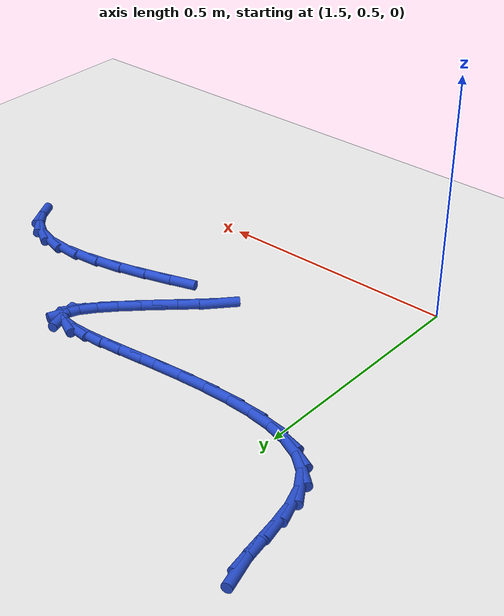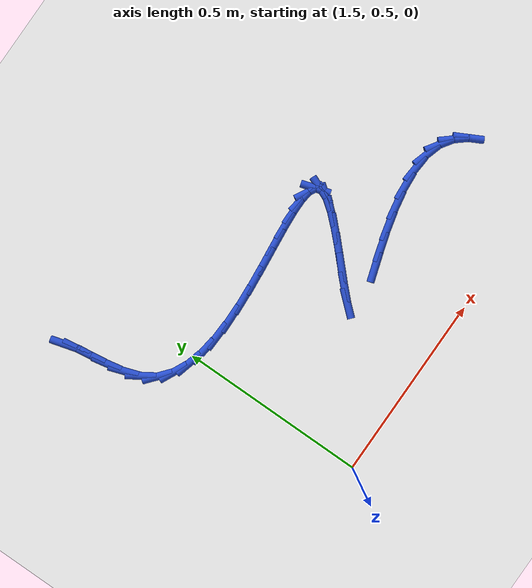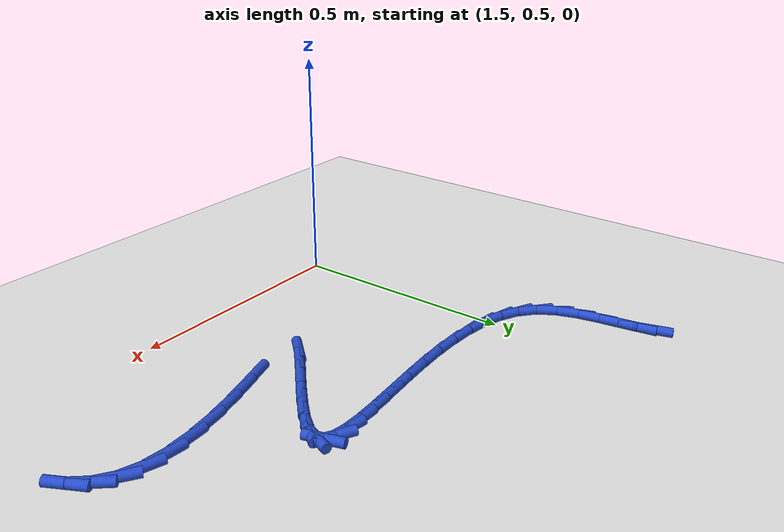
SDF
<sdf version="1.6">
 <world name="default">
  <model name="ground_plane">
   <static>1</static>
   <link name="link">
    <collision name="collision">
     <geometry><plane><normal>0 0 1</normal><size>100 100</size></plane></geometry>
     <surface><friction><ode><mu>100</mu><mu2>50</mu2></ode></friction></surface>
    </collision>
    <visual name="visual">
     <cast_shadows>0</cast_shadows>
     <geometry><plane><normal>0 0 1</normal><size>100 100</size></plane></geometry>
     <material>
      <script><uri>file://media/materials/scripts/gazebo.material</uri><name>Gazebo/WhiteGlow</name></script>
     </material>
    </visual>
   </link>
  </model>
  <model name="line">
   <link name="link_58">
    <pose>1.3395981316970167 1.28086766086414 0.01 0 1.57 -1.3000108692132306</pose>
    <collision name="collision">
     <geometry><cylinder><radius>0.01</radius><length>0.08</length></cylinder></geometry>
    </collision>
    <visual name="visual">
     <material>
      <script><name>Gazebo/Blue</name><uri>file://media/materials/scripts/gazebo.material</uri></script>
     </material>
     <geometry><cylinder><radius>0.01</radius><length>0.08</length></cylinder></geometry>
    </visual>
   </link>
   <link name="link_59">
    <pose>1.3480297054629333 1.2504949875656362 0.01 0 1.57 -1.4215956481731047</pose>
    <collision name="collision">
     <geometry><cylinder><radius>0.01</radius><length>0.08</length></cylinder></geometry>
    </collision>
    <visual name="visual">
     <material>
      <script><name>Gazebo/Blue</name><uri>file://media/materials/scripts/gazebo.material</uri></script>
     </material>
     <geometry><cylinder><radius>0.01</radius><length>0.08</length></cylinder></geometry>
    </visual>
   </link>
   <link name="link_60">
    <pose>1.3539640345998423 1.2110164187400687 0.01 0 1.57 -1.4335843074351822</pose>
    <collision name="collision">
     <geometry><cylinder><radius>0.01</radius><length>0.08</length></cylinder></geometry>
    </collision>
    <visual name="visual">
     <material>
      <script><name>Gazebo/Blue</name><uri>file://media/materials/scripts/gazebo.material</uri></script>
     </material>
     <geometry><cylinder><radius>0.01</radius><length>0.08</length></cylinder></geometry>
    </visual>
   </link>
   <link name="link_61">
    <pose>1.3601217949131053 1.1664207090084457 0.01 0 1.57 -1.374304171634273</pose>
    <collision name="collision">
     <geometry><cylinder><radius>0.01</radius><length>0.08</length></cylinder></geometry>
    </collision>
    <visual name="visual">
     <material>
      <script><name>Gazebo/Blue</name><uri>file://media/materials/scripts/gazebo.material</uri></script>
     </material>
     <geometry><cylinder><radius>0.01</radius><length>0.08</length></cylinder></geometry>
    </visual>
   </link>
   <link name="link_62">
    <pose>1.3692236622080818 1.1206966129917757 0.01 0 1.57 -1.239027662566537</pose>
    <collision name="collision">
     <geometry><cylinder><radius>0.01</radius><length>0.08</length></cylinder></geometry>
    </collision>
    <visual name="visual">
     <material>
      <script><name>Gazebo/Blue</name><uri>file://media/materials/scripts/gazebo.material</uri></script>
     </material>
     <geometry><cylinder><radius>0.01</radius><length>0.08</length></cylinder></geometry>
    </visual>
   </link>
   <link name="link_63">
    <pose>1.3839903122901314 1.0778328853110644 0.01 0 1.57 -1.0006229405166875</pose>
    <collision name="collision">
     <geometry><cylinder><radius>0.01</radius><length>0.08</length></cylinder></geometry>
    </collision>
    <visual name="visual">
     <material>
      <script><name>Gazebo/Blue</name><uri>file://media/materials/scripts/gazebo.material</uri></script>
     </material>
     <geometry><cylinder><radius>0.01</radius><length>0.08</length></cylinder></geometry>
    </visual>
   </link>
   <link name="link_64">
    <pose>1.4071089162337873 1.0417784123709457 0.01 0 1.57 -0.6981134285419979</pose>
    <collision name="collision">
     <geometry><cylinder><radius>0.01</radius><length>0.08</length></cylinder></geometry>
    </collision>
    <visual name="visual">
     <material>
      <script><name>Gazebo/Blue</name><uri>file://media/materials/scripts/gazebo.material</uri></script>
     </material>
     <geometry><cylinder><radius>0.01</radius><length>0.08</length></cylinder></geometry>
    </visual>
   </link>
   <link name="link_65">
    <pose>1.439608513915992 1.01450902388425 0.01 0 1.57 -0.4454312048280866</pose>
    <collision name="collision">
     <geometry><cylinder><radius>0.01</radius><length>0.08</length></cylinder></geometry>
    </collision>
    <visual name="visual">
     <material>
      <script><name>Gazebo/Blue</name><uri>file://media/materials/scripts/gazebo.material</uri></script>
     </material>
     <geometry><cylinder><radius>0.01</radius><length>0.08</length></cylinder></geometry>
    </visual>
   </link>
   <link name="link_66">
    <pose>1.4801323502916675 0.9951616254527385 0.01 0 1.57 -0.26008139689269083</pose>
    <collision name="collision">
     <geometry><cylinder><radius>0.01</radius><length>0.08</length></cylinder></geometry>
    </collision>
    <visual name="visual">
     <material>
      <script><name>Gazebo/Blue</name><uri>file://media/materials/scripts/gazebo.material</uri></script>
     </material>
     <geometry><cylinder><radius>0.01</radius><length>0.08</length></cylinder></geometry>
    </visual>
   </link>
   <link name="link_67">
    <pose>1.5271385664036612 0.9826528623556339 0.01 0 1.57 -0.12928270286523671</pose>
    <collision name="collision">
     <geometry><cylinder><radius>0.01</radius><length>0.08</length></cylinder></geometry>
    </collision>
    <visual name="visual">
     <material>
      <script><name>Gazebo/Blue</name><uri>file://media/materials/scripts/gazebo.material</uri></script>
     </material>
     <geometry><cylinder><radius>0.01</radius><length>0.08</length></cylinder></geometry>
    </visual>
   </link>
   <link name="link_68">
    <pose>1.5790853032948247 0.9758993798721592 0.01 0 1.57 -0.03759257307025724</pose>
    <collision name="collision">
     <geometry><cylinder><radius>0.01</radius><length>0.08</length></cylinder></geometry>
    </collision>
    <visual name="visual">
     <material>
      <script><name>Gazebo/Blue</name><uri>file://media/materials/scripts/gazebo.material</uri></script>
     </material>
     <geometry><cylinder><radius>0.01</radius><length>0.08</length></cylinder></geometry>
    </visual>
   </link>
   <link name="link_69">
    <pose>1.6344307020080053 0.9738178232815377 0.01 0 1.57 0.026339302023560128</pose>
    <collision name="collision">
     <geometry><cylinder><radius>0.01</radius><length>0.08</length></cylinder></geometry>
    </collision>
    <visual name="visual">
     <material>
      <script><name>Gazebo/Blue</name><uri>file://media/materials/scripts/gazebo.material</uri></script>
     </material>
     <geometry><cylinder><radius>0.01</radius><length>0.08</length></cylinder></geometry>
    </visual>
   </link>
   <link name="link_70">
    <pose>1.691632903586054 0.9753248378629921 0.01 0 1.57 0.06964431246586442</pose>
    <collision name="collision">
     <geometry><cylinder><radius>0.01</radius><length>0.08</length></cylinder></geometry>
    </collision>
    <visual name="visual">
     <material>
      <script><name>Gazebo/Blue</name><uri>file://media/materials/scripts/gazebo.material</uri></script>
     </material>
     <geometry><cylinder><radius>0.01</radius><length>0.08</length></cylinder></geometry>
    </visual>
   </link>
   <link name="link_71">
    <pose>1.7491500490718197 0.9793370688957459 0.01 0 1.57 0.09623882612468158</pose>
    <collision name="collision">
     <geometry><cylinder><radius>0.01</radius><length>0.08</length></cylinder></geometry>
    </collision>
    <visual name="visual">
     <material>
      <script><name>Gazebo/Blue</name><uri>file://media/materials/scripts/gazebo.material</uri></script>
     </material>
     <geometry><cylinder><radius>0.01</radius><length>0.08</length></cylinder></geometry>
    </visual>
   </link>
   <link name="link_72">
    <pose>1.8054402795081512 0.9847711616590212 0.01 0 1.57 0.10744047579158085</pose>
    <collision name="collision">
     <geometry><cylinder><radius>0.01</radius><length>0.08</length></cylinder></geometry>
    </collision>
    <visual name="visual">
     <material>
      <script><name>Gazebo/Blue</name><uri>file://media/materials/scripts/gazebo.material</uri></script>
     </material>
     <geometry><cylinder><radius>0.01</radius><length>0.08</length></cylinder></geometry>
    </visual>
   </link>
   <link name="link_73">
    <pose>1.8589617359378987 0.9905437614320417 0.01 0 1.57 0.1018143340458194</pose>
    <collision name="collision">
     <geometry><cylinder><radius>0.01</radius><length>0.08</length></cylinder></geometry>
    </collision>
    <visual name="visual">
     <material>
      <script><name>Gazebo/Blue</name><uri>file://media/materials/scripts/gazebo.material</uri></script>
     </material>
     <geometry><cylinder><radius>0.01</radius><length>0.08</length></cylinder></geometry>
    </visual>
   </link>
   <link name="link_74">
    <pose>1.9081725594039114 0.9955715134940303 0.01 0 1.57 0.07365968134507157</pose>
    <collision name="collision">
     <geometry><cylinder><radius>0.01</radius><length>0.08</length></cylinder></geometry>
    </collision>
    <visual name="visual">
     <material>
      <script><name>Gazebo/Blue</name><uri>file://media/materials/scripts/gazebo.material</uri></script>
     </material>
     <geometry><cylinder><radius>0.01</radius><length>0.08</length></cylinder></geometry>
    </visual>
   </link>
   <link name="link_75">
    <pose>1.951530890949038 0.9987710631242097 0.01 0 1.57 0.008007631987830582</pose>
    <collision name="collision">
     <geometry><cylinder><radius>0.01</radius><length>0.08</length></cylinder></geometry>
    </collision>
    <visual name="visual">
     <material>
      <script><name>Gazebo/Blue</name><uri>file://media/materials/scripts/gazebo.material</uri></script>
     </material>
     <geometry><cylinder><radius>0.01</radius><length>0.08</length></cylinder></geometry>
    </visual>
   </link>
   <link name="link_76">
    <pose>1.9874948716161285 0.9990590556018031 0.01 0 1.57 -0.13630184237400225</pose>
    <collision name="collision">
     <geometry><cylinder><radius>0.01</radius><length>0.08</length></cylinder></geometry>
    </collision>
    <visual name="visual">
     <material>
      <script><name>Gazebo/Blue</name><uri>file://media/materials/scripts/gazebo.material</uri></script>
     </material>
     <geometry><cylinder><radius>0.01</radius><length>0.08</length></cylinder></geometry>
    </visual>
   </link>
   <link name="link_77">
    <pose>2.0145226424480325 0.9953521362060335 0.01 0 1.57 -0.4880114138208025</pose>
    <collision name="collision">
     <geometry><cylinder><radius>0.01</radius><length>0.08</length></cylinder></geometry>
    </collision>
    <visual name="visual">
     <material>
      <script><name>Gazebo/Blue</name><uri>file://media/materials/scripts/gazebo.material</uri></script>
     </material>
     <geometry><cylinder><radius>0.01</radius><length>0.08</length></cylinder></geometry>
    </visual>
   </link>
   <link name="link_78">
    <pose>2.031072344487599 0.9865669502161238 0.01 0 1.57 -1.2765348770322262</pose>
    <collision name="collision">
     <geometry><cylinder><radius>0.01</radius><length>0.08</length></cylinder></geometry>
    </collision>
    <visual name="visual">
     <material>
      <script><name>Gazebo/Blue</name><uri>file://media/materials/scripts/gazebo.material</uri></script>
     </material>
     <geometry><cylinder><radius>0.01</radius><length>0.08</length></cylinder></geometry>
    </visual>
   </link>
   <link name="link_79">
    <pose>2.035602118777677 0.9716201429112967 0.01 0 1.57 1.1871877706583496</pose>
    <collision name="collision">
     <geometry><cylinder><radius>0.01</radius><length>0.08</length></cylinder></geometry>
    </collision>
    <visual name="visual">
     <material>
      <script><name>Gazebo/Blue</name><uri>file://media/materials/scripts/gazebo.material</uri></script>
     </material>
     <geometry><cylinder><radius>0.01</radius><length>0.08</length></cylinder></geometry>
    </visual>
   </link>
   <link name="link_80">
    <pose>2.0266711225792595 0.9494919724691845 0.01 0 1.57 0.9319294835685853</pose>
    <collision name="collision">
     <geometry><cylinder><radius>0.01</radius><length>0.08</length></cylinder></geometry>
    </collision>
    <visual name="visual">
     <material>
      <script><name>Gazebo/Blue</name><uri>file://media/materials/scripts/gazebo.material</uri></script>
     </material>
     <geometry><cylinder><radius>0.01</radius><length>0.08</length></cylinder></geometry>
    </visual>
   </link>
   <link name="link_81">
    <pose>2.005289460436291 0.9207061310167515 0.01 0 1.57 0.8330160934214821</pose>
    <collision name="collision">
     <geometry><cylinder><radius>0.01</radius><length>0.08</length></cylinder></geometry>
    </collision>
    <visual name="visual">
     <material>
      <script><name>Gazebo/Blue</name><uri>file://media/materials/scripts/gazebo.material</uri></script>
     </material>
     <geometry><cylinder><radius>0.01</radius><length>0.08</length></cylinder></geometry>
    </visual>
   </link>
   <link name="link_82">
    <pose>1.974991226310694 0.8873757414217053 0.01 0 1.57 0.7871372419610609</pose>
    <collision name="collision">
     <geometry><cylinder><radius>0.01</radius><length>0.08</length></cylinder></geometry>
    </collision>
    <visual name="visual">
     <material>
      <script><name>Gazebo/Blue</name><uri>file://media/materials/scripts/gazebo.material</uri></script>
     </material>
     <geometry><cylinder><radius>0.01</radius><length>0.08</length></cylinder></geometry>
    </visual>
   </link>
   <link name="link_83">
    <pose>1.939426142758848 0.8516867412954406 0.01 0 1.57 0.7673214474083236</pose>
    <collision name="collision">
     <geometry><cylinder><radius>0.01</radius><length>0.08</length></cylinder></geometry>
    </collision>
    <visual name="visual">
     <material>
      <script><name>Gazebo/Blue</name><uri>file://media/materials/scripts/gazebo.material</uri></script>
     </material>
     <geometry><cylinder><radius>0.01</radius><length>0.08</length></cylinder></geometry>
    </visual>
   </link>
   <link name="link_84">
    <pose>1.9022439323371352 0.8158250682493546 0.01 0 1.57 0.7665417947850478</pose>
    <collision name="collision">
     <geometry><cylinder><radius>0.01</radius><length>0.08</length></cylinder></geometry>
    </collision>
    <visual name="visual">
     <material>
      <script><name>Gazebo/Blue</name><uri>file://media/materials/scripts/gazebo.material</uri></script>
     </material>
     <geometry><cylinder><radius>0.01</radius><length>0.08</length></cylinder></geometry>
    </visual>
   </link>
   <link name="link_85">
    <pose>1.867094317601936 0.7819766598948418 0.01 0 1.57 0.7884752903799574</pose>
    <collision name="collision">
     <geometry><cylinder><radius>0.01</radius><length>0.08</length></cylinder></geometry>
    </collision>
    <visual name="visual">
     <material>
      <script><name>Gazebo/Blue</name><uri>file://media/materials/scripts/gazebo.material</uri></script>
     </material>
     <geometry><cylinder><radius>0.01</radius><length>0.08</length></cylinder></geometry>
    </visual>
   </link>
   <link name="link_86">
    <pose>1.8376270211096326 0.7523274538432992 0.01 0 1.57 0.8573671830383249</pose>
    <collision name="collision">
     <geometry><cylinder><radius>0.01</radius><length>0.08</length></cylinder></geometry>
    </collision>
    <visual name="visual">
     <material>
      <script><name>Gazebo/Blue</name><uri>file://media/materials/scripts/gazebo.material</uri></script>
     </material>
     <geometry><cylinder><radius>0.01</radius><length>0.08</length></cylinder></geometry>
    </visual>
   </link>
   <link name="link_93">
    <pose>1.9532016746729786 0.7471842679798536 0.01 0 1.57 0.3115701809112702</pose>
    <collision name="collision">
     <geometry><cylinder><radius>0.01</radius><length>0.08</length></cylinder></geometry>
    </collision>
    <visual name="visual">
     <material>
      <script><name>Gazebo/Blue</name><uri>file://media/materials/scripts/gazebo.material</uri></script>
     </material>
     <geometry><cylinder><radius>0.01</radius><length>0.08</length></cylinder></geometry>
    </visual>
   </link>
   <link name="link_94">
    <pose>2.0041669943631364 0.7635981422477308 0.01 0 1.57 0.2856599593066862</pose>
    <collision name="collision">
     <geometry><cylinder><radius>0.01</radius><length>0.08</length></cylinder></geometry>
    </collision>
    <visual name="visual">
     <material>
      <script><name>Gazebo/Blue</name><uri>file://media/materials/scripts/gazebo.material</uri></script>
     </material>
     <geometry><cylinder><radius>0.01</radius><length>0.08</length></cylinder></geometry>
    </visual>
   </link>
   <link name="link_95">
    <pose>2.0580476518998108 0.7794224790895498 0.01 0 1.57 0.24263968333161215</pose>
    <collision name="collision">
     <geometry><cylinder><radius>0.01</radius><length>0.08</length></cylinder></geometry>
    </collision>
    <visual name="visual">
     <material>
      <script><name>Gazebo/Blue</name><uri>file://media/materials/scripts/gazebo.material</uri></script>
     </material>
     <geometry><cylinder><radius>0.01</radius><length>0.08</length></cylinder></geometry>
    </visual>
   </link>
   <link name="link_96">
    <pose>2.1128953941647524 0.7929981883189902 0.01 0 1.57 0.17758954911010977</pose>
    <collision name="collision">
     <geometry><cylinder><radius>0.01</radius><length>0.08</length></cylinder></geometry>
    </collision>
    <visual name="visual">
     <material>
      <script><name>Gazebo/Blue</name><uri>file://media/materials/scripts/gazebo.material</uri></script>
     </material>
     <geometry><cylinder><radius>0.01</radius><length>0.08</length></cylinder></geometry>
    </visual>
   </link>
   <link name="link_97">
    <pose>2.166761968039709 0.8026661797497314 0.01 0 1.57 0.08034127270707626</pose>
    <collision name="collision">
     <geometry><cylinder><radius>0.01</radius><length>0.08</length></cylinder></geometry>
    </collision>
    <visual name="visual">
     <material>
      <script><name>Gazebo/Blue</name><uri>file://media/materials/scripts/gazebo.material</uri></script>
     </material>
     <geometry><cylinder><radius>0.01</radius><length>0.08</length></cylinder></geometry>
    </visual>
   </link>
   <link name="link_98">
    <pose>2.217699120406431 0.8067673631954532 0.01 0 1.57 -0.06773707305881851</pose>
    <collision name="collision">
     <geometry><cylinder><radius>0.01</radius><length>0.08</length></cylinder></geometry>
    </collision>
    <visual name="visual">
     <material>
      <script><name>Gazebo/Blue</name><uri>file://media/materials/scripts/gazebo.material</uri></script>
     </material>
     <geometry><cylinder><radius>0.01</radius><length>0.08</length></cylinder></geometry>
    </visual>
   </link>
   <link name="link_99">
    <pose>2.2637585981466684 0.8036426484698349 0.01 0 1.57 -0.29581174602810734</pose>
    <collision name="collision">
     <geometry><cylinder><radius>0.01</radius><length>0.08</length></cylinder></geometry>
    </collision>
    <visual name="visual">
     <material>
      <script><name>Gazebo/Blue</name><uri>file://media/materials/scripts/gazebo.material</uri></script>
     </material>
     <geometry><cylinder><radius>0.01</radius><length>0.08</length></cylinder></geometry>
    </visual>
   </link>
   <link name="link_100">
    <pose>2.303029124883706 0.7916748322494609 0.01 0 1.57 -0.586971514379971</pose>
    <collision name="collision">
     <geometry><cylinder><radius>0.01</radius><length>0.08</length></cylinder></geometry>
    </collision>
    <visual name="visual">
     <material>
      <script><name>Gazebo/Blue</name><uri>file://media/materials/scripts/gazebo.material</uri></script>
     </material>
     <geometry><cylinder><radius>0.01</radius><length>0.08</length></cylinder></geometry>
    </visual>
   </link>
   <link name="link_101">
    <pose>2.334763749943402 0.7705656470893085 0.01 0 1.57 -0.8627776583636111</pose>
    <collision name="collision">
     <geometry><cylinder><radius>0.01</radius><length>0.08</length></cylinder></geometry>
    </collision>
    <visual name="visual">
     <material>
      <script><name>Gazebo/Blue</name><uri>file://media/materials/scripts/gazebo.material</uri></script>
     </material>
     <geometry><cylinder><radius>0.01</radius><length>0.08</length></cylinder></geometry>
    </visual>
   </link>
   <link name="link_102">
    <pose>2.3595866222654194 0.7415699927290288 0.01 0 1.57 -1.0883105744944495</pose>
    <collision name="collision">
     <geometry><cylinder><radius>0.01</radius><length>0.08</length></cylinder></geometry>
    </collision>
    <visual name="visual">
     <material>
      <script><name>Gazebo/Blue</name><uri>file://media/materials/scripts/gazebo.material</uri></script>
     </material>
     <geometry><cylinder><radius>0.01</radius><length>0.08</length></cylinder></geometry>
    </visual>
   </link>
  </model>
 </world>
</sdf>
